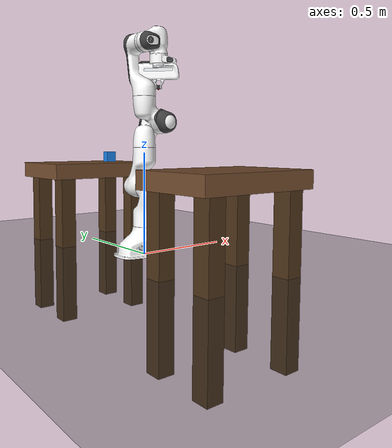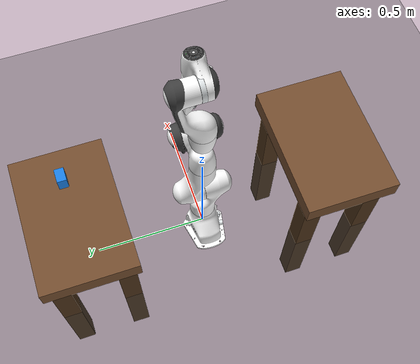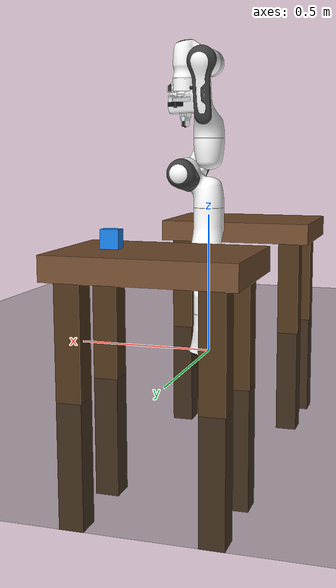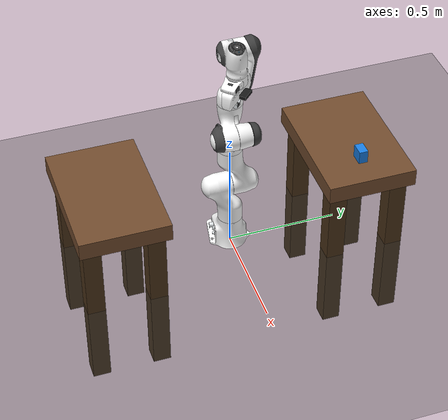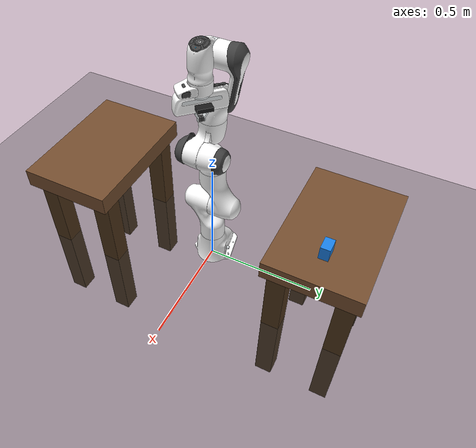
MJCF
<mujoco model="panda_scene">
  <compiler angle="radian" meshdir="../model/franka_emika_panda/assets"/>

  <visual>
    <headlight diffuse="0.8 0.8 0.8" ambient="0.5 0.5 0.5" specular="0.2 0.2 0.2"/>
  </visual>

  <asset>
    <texture name="ground_texture" type="2d" builtin="checker" rgb1="0.25 0.25 0.25" rgb2="0.12 0.12 0.12" mark="edge" markrgb="0.8 0.8 0.8" width="300" height="300"/>
    <material name="groundplane" texture="ground_texture" texrepeat="5 5" texuniform="true"/>
  </asset>

  <worldbody>
    <include file="../world/test.xml"/>
  </worldbody>

  <include file="../model/franka_emika_panda/panda.xml"/>
</mujoco>

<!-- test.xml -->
<mujocoinclude>
  <light name="world_light" pos="0 0 3" dir="0 0 -1" directional="true"/>
  <geom name="floor" type="plane" size="3 3 0.1" material="groundplane"/>

  <body name="table1" pos="0 0.55 0.4">
    <geom name="table1_top" type="box" size="0.3 0.2 0.04" rgba="0.45 0.3 0.18 1"/>
    <geom name="table1_leg1" type="box" pos="0.22 0.14 -0.4" size="0.04 0.04 0.4" rgba="0.3 0.2 0.1 1"/>
    <geom name="table1_leg2" type="box" pos="-0.22 0.14 -0.4" size="0.04 0.04 0.4" rgba="0.3 0.2 0.1 1"/>
    <geom name="table1_leg3" type="box" pos="0.22 -0.14 -0.4" size="0.04 0.04 0.4" rgba="0.3 0.2 0.1 1"/>
    <geom name="table1_leg4" type="box" pos="-0.22 -0.14 -0.4" size="0.04 0.04 0.4" rgba="0.3 0.2 0.1 1"/>
  </body>

  <body name="table2" pos="0 -0.55 0.4">
    <geom name="table2_top" type="box" size="0.3 0.2 0.04" rgba="0.45 0.3 0.18 1"/>
    <geom name="table2_leg1" type="box" pos="0.22 0.14 -0.4" size="0.04 0.04 0.4" rgba="0.3 0.2 0.1 1"/>
    <geom name="table2_leg2" type="box" pos="-0.22 0.14 -0.4" size="0.04 0.04 0.4" rgba="0.3 0.2 0.1 1"/>
    <geom name="table2_leg3" type="box" pos="0.22 -0.14 -0.4" size="0.04 0.04 0.4" rgba="0.3 0.2 0.1 1"/>
    <geom name="table2_leg4" type="box" pos="-0.22 -0.14 -0.4" size="0.04 0.04 0.4" rgba="0.3 0.2 0.1 1"/>
  </body>

  <body name="pnp_object" pos="0.15 0.55 0.47">
    <freejoint/>
    <geom name="pnp_object_geom" type="box" size="0.03 0.02 0.03" mass="0.2" rgba="0.1 0.5 0.9 1"/>
  </body>

  <body name="ceiling_camera_link" pos="0 0.55 1.5">
    <camera name="ceiling_camera" pos="0 0 0" fovy="58"/>
  </body>
</mujocoinclude>

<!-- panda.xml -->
<mujoco model="panda">
  <compiler angle="radian" autolimits="true"/>
  <option integrator="implicitfast"/>

  <default>
    <default class="panda">
      <material specular="0.5" shininess="0.25"/>
      <joint armature="0.1" damping="1" axis="0 0 1" range="-2.8973 2.8973"/>
      <general dyntype="none" biastype="affine" ctrlrange="-2.8973 2.8973" forcerange="-87 87"/>
      <default class="finger">
        <joint axis="0 1 0" type="slide" range="0 0.04"/>
      </default>
      <default class="visual">
        <geom type="mesh" contype="0" conaffinity="0" group="2"/>
      </default>
      <default class="collision">
        <geom type="mesh" group="3"/>
        <default class="fingertip_pad_collision_1">
          <geom type="box" size="0.0085 0.004 0.0085" pos="0 0.0055 0.0445"/>
        </default>
        <default class="fingertip_pad_collision_2">
          <geom type="box" size="0.003 0.002 0.003" pos="0.0055 0.002 0.05"/>
        </default>
        <default class="fingertip_pad_collision_3">
          <geom type="box" size="0.003 0.002 0.003" pos="-0.0055 0.002 0.05"/>
        </default>
        <default class="fingertip_pad_collision_4">
          <geom type="box" size="0.003 0.002 0.0035" pos="0.0055 0.002 0.0395"/>
        </default>
        <default class="fingertip_pad_collision_5">
          <geom type="box" size="0.003 0.002 0.0035" pos="-0.0055 0.002 0.0395"/>
        </default>
      </default>
    </default>
  </default>

  <asset>
    <material class="panda" name="white" rgba="1 1 1 1"/>
    <material class="panda" name="off_white" rgba="0.901961 0.921569 0.929412 1"/>
    <material class="panda" name="black" rgba="0.25 0.25 0.25 1"/>
    <material class="panda" name="green" rgba="0 1 0 1"/>
    <material class="panda" name="light_blue" rgba="0.039216 0.541176 0.780392 1"/>

    <mesh name="link0_c" file="link0.stl"/>
    <mesh name="link1_c" file="link1.stl"/>
    <mesh name="link2_c" file="link2.stl"/>
    <mesh name="link3_c" file="link3.stl"/>
    <mesh name="link4_c" file="link4.stl"/>
    <mesh name="link5_c0" file="link5_collision_0.obj"/>
    <mesh name="link5_c1" file="link5_collision_1.obj"/>
    <mesh name="link5_c2" file="link5_collision_2.obj"/>
    <mesh name="link6_c" file="link6.stl"/>
    <mesh name="link7_c" file="link7.stl"/>
    <mesh name="hand_c" file="hand.stl"/>

    <mesh file="link0_0.obj"/>
    <mesh file="link0_1.obj"/>
    <mesh file="link0_2.obj"/>
    <mesh file="link0_3.obj"/>
    <mesh file="link0_4.obj"/>
    <mesh file="link0_5.obj"/>
    <mesh file="link0_7.obj"/>
    <mesh file="link0_8.obj"/>
    <mesh file="link0_9.obj"/>
    <mesh file="link0_10.obj"/>
    <mesh file="link0_11.obj"/>
    <mesh file="link1.obj"/>
    <mesh file="link2.obj"/>
    <mesh file="link3_0.obj"/>
    <mesh file="link3_1.obj"/>
    <mesh file="link3_2.obj"/>
    <mesh file="link3_3.obj"/>
    <mesh file="link4_0.obj"/>
    <mesh file="link4_1.obj"/>
    <mesh file="link4_2.obj"/>
    <mesh file="link4_3.obj"/>
    <mesh file="link5_0.obj"/>
    <mesh file="link5_1.obj"/>
    <mesh file="link5_2.obj"/>
    <mesh file="link6_0.obj"/>
    <mesh file="link6_1.obj"/>
    <mesh file="link6_2.obj"/>
    <mesh file="link6_3.obj"/>
    <mesh file="link6_4.obj"/>
    <mesh file="link6_5.obj"/>
    <mesh file="link6_6.obj"/>
    <mesh file="link6_7.obj"/>
    <mesh file="link6_8.obj"/>
    <mesh file="link6_9.obj"/>
    <mesh file="link6_10.obj"/>
    <mesh file="link6_11.obj"/>
    <mesh file="link6_12.obj"/>
    <mesh file="link6_13.obj"/>
    <mesh file="link6_14.obj"/>
    <mesh file="link6_15.obj"/>
    <mesh file="link6_16.obj"/>
    <mesh file="link7_0.obj"/>
    <mesh file="link7_1.obj"/>
    <mesh file="link7_2.obj"/>
    <mesh file="link7_3.obj"/>
    <mesh file="link7_4.obj"/>
    <mesh file="link7_5.obj"/>
    <mesh file="link7_6.obj"/>
    <mesh file="link7_7.obj"/>
    <mesh file="hand_0.obj"/>
    <mesh file="hand_1.obj"/>
    <mesh file="hand_2.obj"/>
    <mesh file="hand_3.obj"/>
    <mesh file="hand_4.obj"/>
    <mesh file="finger_0.obj"/>
    <mesh file="finger_1.obj"/>
  </asset>

  <worldbody>
    <light name="top" pos="0 0 2" mode="trackcom"/>

    <body name="link0" childclass="panda">
      <inertial mass="0.629769" pos="-0.041018 -0.00014 0.049974" fullinertia="0.00315 0.00388 0.004285 8.2904e-7 0.00015 8.2299e-6"/>
      <geom mesh="link0_0" material="off_white" class="visual"/>
      <geom mesh="link0_1" material="black" class="visual"/>
      <geom mesh="link0_2" material="off_white" class="visual"/>
      <geom mesh="link0_3" material="black" class="visual"/>
      <geom mesh="link0_4" material="off_white" class="visual"/>
      <geom mesh="link0_5" material="black" class="visual"/>
      <geom mesh="link0_7" material="white" class="visual"/>
      <geom mesh="link0_8" material="white" class="visual"/>
      <geom mesh="link0_9" material="black" class="visual"/>
      <geom mesh="link0_10" material="off_white" class="visual"/>
      <geom mesh="link0_11" material="white" class="visual"/>
      <geom mesh="link0_c" class="collision"/>

      <body name="link1" pos="0 0 0.333">
        <inertial mass="4.970684" pos="0.003875 0.002081 -0.04762" fullinertia="0.70337 0.70661 0.0091170 -0.00013900 0.0067720 0.019169"/>
        <joint name="joint1"/>
        <geom material="white" mesh="link1" class="visual"/>
        <geom mesh="link1_c" class="collision"/>

        <body name="link2" quat="1 -1 0 0">
          <inertial mass="0.646926" pos="-0.003141 -0.02872 0.003495" fullinertia="0.0079620 2.8110e-2 2.5995e-2 -3.925e-3 1.0254e-2 7.04e-4"/>
          <joint name="joint2" range="-1.7628 1.7628"/>
          <geom material="white" mesh="link2" class="visual"/>
          <geom mesh="link2_c" class="collision"/>

          <body name="link3" pos="0 -0.316 0" quat="1 1 0 0">
            <joint name="joint3"/>
            <inertial mass="3.228604" pos="2.7518e-2 3.9252e-2 -6.6502e-2" fullinertia="3.7242e-2 3.6155e-2 1.083e-2 -4.761e-3 -1.1396e-2 -1.2805e-2"/>
            <geom mesh="link3_0" material="white" class="visual"/>
            <geom mesh="link3_1" material="white" class="visual"/>
            <geom mesh="link3_2" material="white" class="visual"/>
            <geom mesh="link3_3" material="black" class="visual"/>
            <geom mesh="link3_c" class="collision"/>

            <body name="link4" pos="0.0825 0 0" quat="1 1 0 0">
              <inertial mass="3.587895" pos="-5.317e-2 1.04419e-1 2.7454e-2" fullinertia="2.5853e-2 1.9552e-2 2.8323e-2 7.796e-3 -1.332e-3 8.641e-3"/>
              <joint name="joint4" range="-3.0718 -0.0698"/>
              <geom mesh="link4_0" material="white" class="visual"/>
              <geom mesh="link4_1" material="white" class="visual"/>
              <geom mesh="link4_2" material="black" class="visual"/>
              <geom mesh="link4_3" material="white" class="visual"/>
              <geom mesh="link4_c" class="collision"/>

              <body name="link5" pos="-0.0825 0.384 0" quat="1 -1 0 0">
                <inertial mass="1.225946" pos="-1.1953e-2 4.1065e-2 -3.8437e-2" fullinertia="3.5549e-2 2.9474e-2 8.627e-3 -2.117e-3 -4.037e-3 2.29e-4"/>
                <joint name="joint5"/>
                <geom mesh="link5_0" material="black" class="visual"/>
                <geom mesh="link5_1" material="white" class="visual"/>
                <geom mesh="link5_2" material="white" class="visual"/>
                <geom mesh="link5_c0" class="collision"/>
                <geom mesh="link5_c1" class="collision"/>
                <geom mesh="link5_c2" class="collision"/>

                <body name="link6" quat="1 1 0 0">
                  <inertial mass="1.666555" pos="6.0149e-2 -1.4117e-2 -1.0517e-2" fullinertia="1.964e-3 4.354e-3 5.433e-3 1.09e-4 -1.158e-3 3.41e-4"/>
                  <joint name="joint6" range="-0.0175 3.7525"/>
                  <geom mesh="link6_0" material="off_white" class="visual"/>
                  <geom mesh="link6_1" material="white" class="visual"/>
                  <geom mesh="link6_2" material="black" class="visual"/>
                  <geom mesh="link6_3" material="white" class="visual"/>
                  <geom mesh="link6_4" material="white" class="visual"/>
                  <geom mesh="link6_5" material="white" class="visual"/>
                  <geom mesh="link6_6" material="white" class="visual"/>
                  <geom mesh="link6_7" material="light_blue" class="visual"/>
                  <geom mesh="link6_8" material="light_blue" class="visual"/>
                  <geom mesh="link6_9" material="black" class="visual"/>
                  <geom mesh="link6_10" material="black" class="visual"/>
                  <geom mesh="link6_11" material="white" class="visual"/>
                  <geom mesh="link6_12" material="green" class="visual"/>
                  <geom mesh="link6_13" material="white" class="visual"/>
                  <geom mesh="link6_14" material="black" class="visual"/>
                  <geom mesh="link6_15" material="black" class="visual"/>
                  <geom mesh="link6_16" material="white" class="visual"/>
                  <geom mesh="link6_c" class="collision"/>

                  <body name="link7" pos="0.088 0 0" quat="1 1 0 0">
                    <inertial mass="7.35522e-01" pos="1.0517e-2 -4.252e-3 6.1597e-2" fullinertia="1.2516e-2 1.0027e-2 4.815e-3 -4.28e-4 -1.196e-3 -7.41e-4"/>
                    <joint name="joint7"/>
                    <geom mesh="link7_0" material="white" class="visual"/>
                    <geom mesh="link7_1" material="black" class="visual"/>
                    <geom mesh="link7_2" material="black" class="visual"/>
                    <geom mesh="link7_3" material="black" class="visual"/>
                    <geom mesh="link7_4" material="black" class="visual"/>
                    <geom mesh="link7_5" material="black" class="visual"/>
                    <geom mesh="link7_6" material="black" class="visual"/>
                    <geom mesh="link7_7" material="white" class="visual"/>
                    <geom mesh="link7_c" class="collision"/>

                    <!-- Panda Hand (그리퍼 베이스) -->
                    <body name="hand" pos="0 0 0.107" quat="0.9238795 0 0 -0.3826834">
                      <inertial mass="0.73" pos="-0.01 0 0.03" diaginertia="0.001 0.0025 0.0017"/>

                      <!-- Panda Hand Visual & Collision -->
                      <geom mesh="hand_0" material="off_white" class="visual"/>
                      <geom mesh="hand_1" material="black" class="visual"/>
                      <geom mesh="hand_2" material="black" class="visual"/>
                      <geom mesh="hand_3" material="white" class="visual"/>
                      <geom mesh="hand_4" material="off_white" class="visual"/>
                      <geom mesh="hand_c" class="collision"/>

                      <!-- TCP: 그리퍼 중앙 작업 기준점 -->
                      <site name="tcp" pos="0 0 0.11" size="0.006" rgba="1 0 0 1"/>

                      <!-- ================= [카메라] ================= -->
                      <body name="wrist_camera_link" pos="0.04 0 0.035" quat="0.7071068 0 0 0.7071068">
                        <!-- 외형 -->
                        <geom name="cam_body" type="box" size="0.03 0.015 0.008" rgba="0.1 0.1 0.1 1"/>
                        <geom name="cam_lens" type="cylinder" size="0.006 0.003" pos="0 0 0.008" quat="1 0 0 0" rgba="0.2 0.2 0.8 1"/>

                        <!-- 카메라 -->
                        <site name="wrist_cam_site" pos="0 0 0.008" size="0.003" rgba="0 1 0 1"/>
                        <camera name="wrist_rgbd_camera" pos="0 0 0.008" fovy="60" quat="0 1 0 0"/>
                      </body>

                      <!-- 손가락 부위 -->
                      <body name="left_finger" pos="0 0 0.0584">
                        <inertial mass="0.015" pos="0 0 0" diaginertia="2.375e-6 2.375e-6 7.5e-7"/>
                        <joint name="finger_joint1" class="finger"/>
                        <geom mesh="finger_0" material="off_white" class="visual"/>
                        <geom mesh="finger_1" material="black" class="visual"/>
                        <geom mesh="finger_0" class="collision"/>
                        <geom class="fingertip_pad_collision_1"/>
                        <geom class="fingertip_pad_collision_2"/>
                        <geom class="fingertip_pad_collision_3"/>
                        <geom class="fingertip_pad_collision_4"/>
                        <geom class="fingertip_pad_collision_5"/>
                      </body>

                      <!-- 오른쪽 손가락 -->
                      <body name="right_finger" pos="0 0 0.0584" quat="0 0 0 1">
                        <inertial mass="0.015" pos="0 0 0" diaginertia="2.375e-6 2.375e-6 7.5e-7"/>
                        <joint name="finger_joint2" class="finger"/>
                        <geom mesh="finger_0" material="off_white" class="visual"/>
                        <geom mesh="finger_1" material="black" class="visual"/>
                        <geom mesh="finger_0" class="collision"/>
                        <geom class="fingertip_pad_collision_1"/>
                        <geom class="fingertip_pad_collision_2"/>
                        <geom class="fingertip_pad_collision_3"/>
                        <geom class="fingertip_pad_collision_4"/>
                        <geom class="fingertip_pad_collision_5"/>
                      </body>
                    </body>
                  </body>
                </body>
              </body>
            </body>
          </body>
        </body>
      </body>
    </body>
  </worldbody>

  <tendon>
    <fixed name="split">
      <joint joint="finger_joint1" coef="0.5"/>
      <joint joint="finger_joint2" coef="0.5"/>
    </fixed>
  </tendon>

  <equality>
    <joint joint1="finger_joint1" joint2="finger_joint2" solimp="0.95 0.99 0.001" solref="0.005 1"/>
  </equality>

  <actuator>
    <general class="panda" name="actuator1" joint="joint1" gainprm="4500" biasprm="0 -4500 -450"/>
    <general class="panda" name="actuator2" joint="joint2" gainprm="4500" biasprm="0 -4500 -450" ctrlrange="-1.7628 1.7628"/>
    <general class="panda" name="actuator3" joint="joint3" gainprm="3500" biasprm="0 -3500 -350"/>
    <general class="panda" name="actuator4" joint="joint4" gainprm="3500" biasprm="0 -3500 -350" ctrlrange="-3.0718 -0.0698"/>
    <general class="panda" name="actuator5" joint="joint5" gainprm="2000" biasprm="0 -2000 -200" forcerange="-12 12"/>
    <general class="panda" name="actuator6" joint="joint6" gainprm="2000" biasprm="0 -2000 -200" forcerange="-12 12" ctrlrange="-0.0175 3.7525"/>
    <general class="panda" name="actuator7" joint="joint7" gainprm="2000" biasprm="0 -2000 -200" forcerange="-12 12"/>
    <general class="panda" name="actuator8" tendon="split" forcerange="-100 100" ctrlrange="0 255" gainprm="0.01568627451 0 0" biasprm="0 -100 -10"/>
  </actuator>

  <keyframe>
    <key name="home" qpos="0 0 0 -1.57079 0 1.57079 -0.7853 0.04 0.04" ctrl="0 0 0 -1.57079 0 1.57079 -0.7853 255"/>
  </keyframe>

  <contact>
    <exclude body1="link0" body2="link1"/>
  </contact>
</mujoco>
